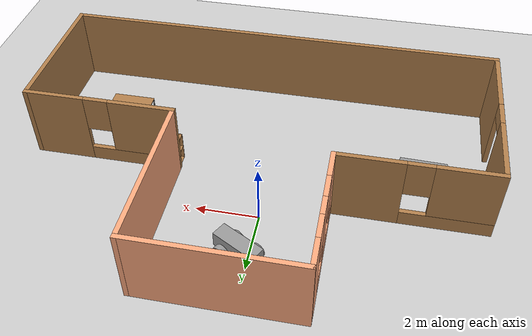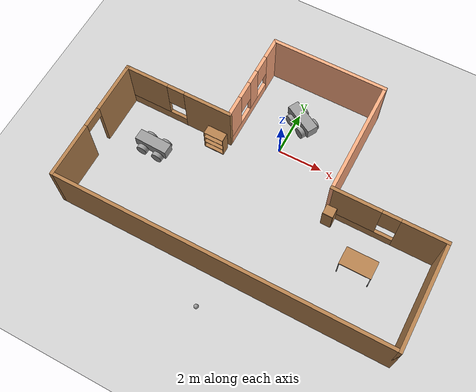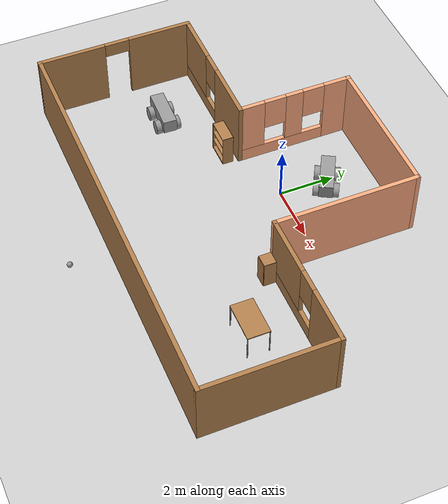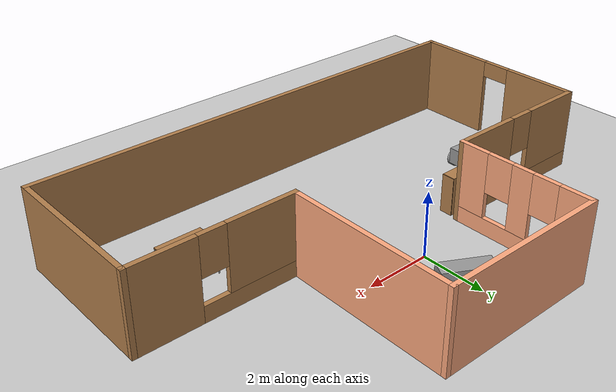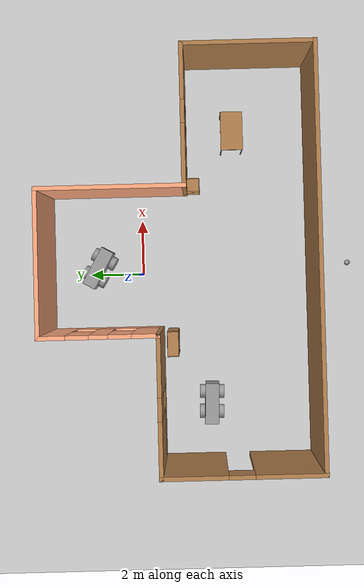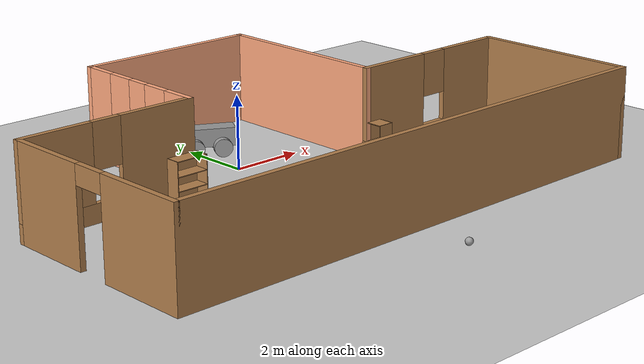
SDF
<sdf version="1.6">
 <world name="default">
  <plugin name="project1" filename="libproject1.so"/>
  <light name="sun" type="directional">
   <pose>0 0 10 0 -0 0</pose>
   <diffuse>0.8 0.8 0.8 1</diffuse>
   <specular>0.1 0.1 0.1 1</specular>
   <attenuation>
    <range>1000</range>
    <constant>0.9</constant>
    <linear>0.01</linear>
    <quadratic>0.001</quadratic>
   </attenuation>
   <direction>-0.5 0.5 -1</direction>
  </light>
  <model name="ground_plane">
   <static>1</static>
   <link name="link">
    <collision name="collision">
     <geometry><plane><normal>0 0 1</normal><size>100 100</size></plane></geometry>
     <surface><friction><ode><mu>100</mu><mu2>50</mu2></ode></friction></surface>
    </collision>
    <visual name="visual">
     <cast_shadows>0</cast_shadows>
     <geometry><plane><normal>0 0 1</normal><size>100 100</size></plane></geometry>
     <material>
      <script><uri>file://media/materials/scripts/gazebo.material</uri><name>Gazebo/Grey</name></script>
     </material>
    </visual>
   </link>
  </model>
  <gravity>0 0 -9.8</gravity>
  <magnetic_field>6e-06 2.3e-05 -4.2e-05</magnetic_field>
  <atmosphere type="adiabatic"/>
  <physics name="default_physics" default="0" type="ode">
   <max_step_size>0.001</max_step_size>
   <real_time_factor>1</real_time_factor>
   <real_time_update_rate>1000</real_time_update_rate>
  </physics>
  <scene><ambient>0.4 0.4 0.4 1</ambient><background>0.7 0.7 0.7 1</background><shadows>1</shadows></scene>
  <spherical_coordinates>
   <surface_model>EARTH_WGS84</surface_model>
   <latitude_deg>0</latitude_deg>
   <longitude_deg>0</longitude_deg>
   <elevation>0</elevation>
   <heading_deg>0</heading_deg>
  </spherical_coordinates>
  <model name="mybuilding">
   <pose>0.47861 -1.41522 0 0 -0 0</pose>
   <link name="Wall_13">
    <collision name="Wall_13_Collision">
     <geometry><box><size>4.75 0.15 2.5</size></box></geometry>
     <pose>0 0 1.25 0 -0 0</pose>
    </collision>
    <visual name="Wall_13_Visual">
     <pose>0 0 1.25 0 -0 0</pose>
     <geometry><box><size>4.75 0.15 2.5</size></box></geometry>
     <material>
      <script><uri>file://media/materials/scripts/gazebo.material</uri><name>Gazebo/Wood</name></script>
      <ambient>1 1 1 1</ambient>
     </material>
    </visual>
    <pose>7.4 -2.55 0 0 -0 1.5708</pose>
   </link>
   <link name="Wall_14">
    <pose>4.975 -0.25 0 0 -0 3.14159</pose>
    <visual name="Wall_14_Visual_0">
     <pose>-1.4975 0 1.25 0 -0 0</pose>
     <geometry><box><size>2.005 0.15 2.5</size></box></geometry>
     <material>
      <script><uri>file://media/materials/scripts/gazebo.material</uri><name>Gazebo/Wood</name></script>
      <ambient>1 1 1 1</ambient>
     </material>
    </visual>
    <collision name="Wall_14_Collision_0">
     <geometry><box><size>2.005 0.15 2.5</size></box></geometry>
     <pose>-1.4975 0 1.25 0 -0 0</pose>
    </collision>
    <visual name="Wall_14_Visual_1">
     <pose>1.0025 0 0.25 0 -0 0</pose>
     <geometry><box><size>2.995 0.15 0.5</size></box></geometry>
     <material>
      <script><uri>file://media/materials/scripts/gazebo.material</uri><name>Gazebo/Wood</name></script>
      <ambient>1 1 1 1</ambient>
     </material>
    </visual>
    <collision name="Wall_14_Collision_1">
     <geometry><box><size>2.995 0.15 0.5</size></box></geometry>
     <pose>1.0025 0 0.25 0 -0 0</pose>
    </collision>
    <visual name="Wall_14_Visual_2">
     <pose>1.4025 0 1.5 0 -0 0</pose>
     <geometry><box><size>2.195 0.15 2</size></box></geometry>
     <material>
      <script><uri>file://media/materials/scripts/gazebo.material</uri><name>Gazebo/Wood</name></script>
      <ambient>1 1 1 1</ambient>
     </material>
    </visual>
    <collision name="Wall_14_Collision_2">
     <geometry><box><size>2.195 0.15 2</size></box></geometry>
     <pose>1.4025 0 1.5 0 -0 0</pose>
    </collision>
    <visual name="Wall_14_Visual_3">
     <pose>-0.095 0 1.9 0 -0 0</pose>
     <geometry><box><size>0.8 0.15 1.2</size></box></geometry>
     <material>
      <script><uri>file://media/materials/scripts/gazebo.material</uri><name>Gazebo/Wood</name></script>
      <ambient>1 1 1 1</ambient>
     </material>
    </visual>
    <collision name="Wall_14_Collision_3">
     <geometry><box><size>0.8 0.15 1.2</size></box></geometry>
     <pose>-0.095 0 1.9 0 -0 0</pose>
    </collision>
   </link>
   <link name="Wall_18">
    <collision name="Wall_18_Collision">
     <geometry><box><size>5.25 0.15 2.5</size></box></geometry>
     <pose>0 0 1.25 0 -0 0</pose>
    </collision>
    <visual name="Wall_18_Visual">
     <pose>0 0 1.25 0 -0 0</pose>
     <geometry><box><size>5.25 0.15 2.5</size></box></geometry>
     <material>
      <script><uri>file://media/materials/scripts/gazebo.material</uri><name>Gazebo/Grey</name></script>
      <ambient>1 0.666667 0.498039 1</ambient>
     </material>
    </visual>
    <pose>2.55 2.3 0 0 -0 1.5708</pose>
   </link>
   <link name="Wall_21">
    <collision name="Wall_21_Collision">
     <geometry><box><size>5.25 0.15 2.5</size></box></geometry>
     <pose>0 0 1.25 0 -0 0</pose>
    </collision>
    <visual name="Wall_21_Visual">
     <pose>0 0 1.25 0 -0 0</pose>
     <geometry><box><size>5.25 0.15 2.5</size></box></geometry>
     <material>
      <script><uri>file://media/materials/scripts/gazebo.material</uri><name>Gazebo/Grey</name></script>
      <ambient>1 0.666667 0.498039 1</ambient>
     </material>
    </visual>
    <pose>0 4.85 0 0 -0 3.14159</pose>
   </link>
   <link name="Wall_23">
    <pose>-2.55 2.8 0 0 0 -1.5708</pose>
    <visual name="Wall_23_Visual_0">
     <pose>-1.6175 0 1.25 0 -0 0</pose>
     <geometry><box><size>1.015 0.15 2.5</size></box></geometry>
     <material>
      <script><uri>file://media/materials/scripts/gazebo.material</uri><name>Gazebo/Grey</name></script>
      <ambient>1 0.666667 0.498039 1</ambient>
     </material>
    </visual>
    <collision name="Wall_23_Collision_0">
     <geometry><box><size>1.015 0.15 2.5</size></box></geometry>
     <pose>-1.6175 0 1.25 0 -0 0</pose>
    </collision>
    <visual name="Wall_23_Visual_1">
     <pose>0.5075 0 0.25 0 -0 0</pose>
     <geometry><box><size>3.235 0.15 0.5</size></box></geometry>
     <material>
      <script><uri>file://media/materials/scripts/gazebo.material</uri><name>Gazebo/Grey</name></script>
      <ambient>1 0.666667 0.498039 1</ambient>
     </material>
    </visual>
    <collision name="Wall_23_Collision_1">
     <geometry><box><size>3.235 0.15 0.5</size></box></geometry>
     <pose>0.5075 0 0.25 0 -0 0</pose>
    </collision>
    <visual name="Wall_23_Visual_2">
     <pose>0.015 0 1.5 0 -0 0</pose>
     <geometry><box><size>0.65 0.15 2</size></box></geometry>
     <material>
      <script><uri>file://media/materials/scripts/gazebo.material</uri><name>Gazebo/Grey</name></script>
      <ambient>1 0.666667 0.498039 1</ambient>
     </material>
    </visual>
    <collision name="Wall_23_Collision_2">
     <geometry><box><size>0.65 0.15 2</size></box></geometry>
     <pose>0.015 0 1.5 0 -0 0</pose>
    </collision>
    <visual name="Wall_23_Visual_3">
     <pose>1.6325 0 1.5 0 -0 0</pose>
     <geometry><box><size>0.985 0.15 2</size></box></geometry>
     <material>
      <script><uri>file://media/materials/scripts/gazebo.material</uri><name>Gazebo/Grey</name></script>
      <ambient>1 0.666667 0.498039 1</ambient>
     </material>
    </visual>
    <collision name="Wall_23_Collision_3">
     <geometry><box><size>0.985 0.15 2</size></box></geometry>
     <pose>1.6325 0 1.5 0 -0 0</pose>
    </collision>
    <visual name="Wall_23_Visual_4">
     <pose>-0.71 0 1.9 0 -0 0</pose>
     <geometry><box><size>0.8 0.15 1.2</size></box></geometry>
     <material>
      <script><uri>file://media/materials/scripts/gazebo.material</uri><name>Gazebo/Grey</name></script>
      <ambient>1 0.666667 0.498039 1</ambient>
     </material>
    </visual>
    <collision name="Wall_23_Collision_4">
     <geometry><box><size>0.8 0.15 1.2</size></box></geometry>
     <pose>-0.71 0 1.9 0 -0 0</pose>
    </collision>
    <visual name="Wall_23_Visual_5">
     <pose>0.74 0 1.9 0 -0 0</pose>
     <geometry><box><size>0.8 0.15 1.2</size></box></geometry>
     <material>
      <script><uri>file://media/materials/scripts/gazebo.material</uri><name>Gazebo/Grey</name></script>
      <ambient>1 0.666667 0.498039 1</ambient>
     </material>
    </visual>
    <collision name="Wall_23_Collision_5">
     <geometry><box><size>0.8 0.15 1.2</size></box></geometry>
     <pose>0.74 0 1.9 0 -0 0</pose>
    </collision>
   </link>
   <link name="Wall_29">
    <pose>-4.975 0.75 0 0 -0 3.14159</pose>
    <visual name="Wall_29_Visual_0">
     <pose>-1.4075 0 1.25 0 -0 0</pose>
     <geometry><box><size>2.185 0.15 2.5</size></box></geometry>
     <material>
      <script><uri>file://media/materials/scripts/gazebo.material</uri><name>Gazebo/Wood</name></script>
      <ambient>1 1 1 1</ambient>
     </material>
    </visual>
    <collision name="Wall_29_Collision_0">
     <geometry><box><size>2.185 0.15 2.5</size></box></geometry>
     <pose>-1.4075 0 1.25 0 -0 0</pose>
    </collision>
    <visual name="Wall_29_Visual_1">
     <pose>1.0925 0 0.25 0 -0 0</pose>
     <geometry><box><size>2.815 0.15 0.5</size></box></geometry>
     <material>
      <script><uri>file://media/materials/scripts/gazebo.material</uri><name>Gazebo/Wood</name></script>
      <ambient>1 1 1 1</ambient>
     </material>
    </visual>
    <collision name="Wall_29_Collision_1">
     <geometry><box><size>2.815 0.15 0.5</size></box></geometry>
     <pose>1.0925 0 0.25 0 -0 0</pose>
    </collision>
    <visual name="Wall_29_Visual_2">
     <pose>1.4925 0 1.5 0 -0 0</pose>
     <geometry><box><size>2.015 0.15 2</size></box></geometry>
     <material>
      <script><uri>file://media/materials/scripts/gazebo.material</uri><name>Gazebo/Wood</name></script>
      <ambient>1 1 1 1</ambient>
     </material>
    </visual>
    <collision name="Wall_29_Collision_2">
     <geometry><box><size>2.015 0.15 2</size></box></geometry>
     <pose>1.4925 0 1.5 0 -0 0</pose>
    </collision>
    <visual name="Wall_29_Visual_3">
     <pose>0.085 0 1.9 0 -0 0</pose>
     <geometry><box><size>0.8 0.15 1.2</size></box></geometry>
     <material>
      <script><uri>file://media/materials/scripts/gazebo.material</uri><name>Gazebo/Wood</name></script>
      <ambient>1 1 1 1</ambient>
     </material>
    </visual>
    <collision name="Wall_29_Collision_3">
     <geometry><box><size>0.8 0.15 1.2</size></box></geometry>
     <pose>0.085 0 1.9 0 -0 0</pose>
    </collision>
   </link>
   <link name="Wall_30">
    <pose>-7.4 -2.05 0 0 0 -1.5708</pose>
    <visual name="Wall_30_Visual_0">
     <pose>-1.6925 0 1.25 0 -0 0</pose>
     <geometry><box><size>2.365 0.15 2.5</size></box></geometry>
     <material>
      <script><uri>file://media/materials/scripts/gazebo.material</uri><name>Gazebo/Wood</name></script>
      <ambient>1 1 1 1</ambient>
     </material>
    </visual>
    <collision name="Wall_30_Collision_0">
     <geometry><box><size>2.365 0.15 2.5</size></box></geometry>
     <pose>-1.6925 0 1.25 0 -0 0</pose>
    </collision>
    <visual name="Wall_30_Visual_1">
     <pose>1.6325 0 1.25 0 -0 0</pose>
     <geometry><box><size>2.485 0.15 2.5</size></box></geometry>
     <material>
      <script><uri>file://media/materials/scripts/gazebo.material</uri><name>Gazebo/Wood</name></script>
      <ambient>1 1 1 1</ambient>
     </material>
    </visual>
    <collision name="Wall_30_Collision_1">
     <geometry><box><size>2.485 0.15 2.5</size></box></geometry>
     <pose>1.6325 0 1.25 0 -0 0</pose>
    </collision>
    <visual name="Wall_30_Visual_2">
     <pose>-0.06 0 2.25 0 -0 0</pose>
     <geometry><box><size>0.9 0.15 0.5</size></box></geometry>
     <material>
      <script><uri>file://media/materials/scripts/gazebo.material</uri><name>Gazebo/Wood</name></script>
      <ambient>1 1 1 1</ambient>
     </material>
    </visual>
    <collision name="Wall_30_Collision_2">
     <geometry><box><size>0.9 0.15 0.5</size></box></geometry>
     <pose>-0.06 0 2.25 0 -0 0</pose>
    </collision>
   </link>
   <link name="Wall_31">
    <collision name="Wall_31_Collision">
     <geometry><box><size>14.95 0.15 2.5</size></box></geometry>
     <pose>0 0 1.25 0 -0 0</pose>
    </collision>
    <visual name="Wall_31_Visual">
     <pose>0 0 1.25 0 -0 0</pose>
     <geometry><box><size>14.95 0.15 2.5</size></box></geometry>
     <material>
      <script><uri>file://media/materials/scripts/gazebo.material</uri><name>Gazebo/Wood</name></script>
      <ambient>1 1 1 1</ambient>
     </material>
    </visual>
    <pose>0 -4.85 0 0 -0 0</pose>
   </link>
   <static>1</static>
  </model>
  <model name="rover">
   <link name="link_2">
    <pose>0 0 0.2 0 -0 0</pose>
    <inertial>
     <mass>1</mass>
     <inertia>
      <ixx>0.166667</ixx>
      <ixy>0</ixy>
      <ixz>0</ixz>
      <iyy>0.166667</iyy>
      <iyz>0</iyz>
      <izz>0.166667</izz>
     </inertia>
    </inertial>
    <visual name="visual">
     <geometry><box><size>0.5 1.5 0.5</size></box></geometry>
     <material>
      <lighting>1</lighting>
      <script><uri>file://media/materials/scripts/gazebo.material</uri><name>Gazebo/Grey</name></script>
      <ambient>0.3 0.3 0.3 1</ambient>
      <diffuse>0.7 0.7 0.7 1</diffuse>
      <specular>0.01 0.01 0.01 1</specular>
      <emissive>0 0 0 1</emissive>
      <shader type="vertex"><normal_map>__default__</normal_map></shader>
     </material>
    </visual>
    <collision name="collision">
     <geometry><box><size>0.5 1.5 0.5</size></box></geometry>
     <surface>
      <friction>
       <ode><mu>1</mu><mu2>1</mu2><fdir1>0 0 0</fdir1><slip1>0</slip1><slip2>0</slip2></ode>
       <torsional>
        <coefficient>1</coefficient>
        <patch_radius>0</patch_radius>
        <surface_radius>0</surface_radius>
        <use_patch_radius>1</use_patch_radius>
        <ode><slip>0</slip></ode>
       </torsional>
      </friction>
      <bounce><restitution_coefficient>0</restitution_coefficient><threshold>1e+06</threshold></bounce>
      <contact>
       <collide_without_contact>0</collide_without_contact>
       <collide_without_contact_bitmask>1</collide_without_contact_bitmask>
       <collide_bitmask>1</collide_bitmask>
       <ode>
        <soft_cfm>0</soft_cfm>
        <soft_erp>0.2</soft_erp>
        <kp>1e+13</kp>
        <kd>1</kd>
        <max_vel>0.01</max_vel>
        <min_depth>0</min_depth>
       </ode>
       <bullet>
        <split_impulse>1</split_impulse>
        <split_impulse_penetration_threshold>-0.01</split_impulse_penetration_threshold>
        <soft_cfm>0</soft_cfm>
        <soft_erp>0.2</soft_erp>
        <kp>1e+13</kp>
        <kd>1</kd>
       </bullet>
      </contact>
     </surface>
    </collision>
   </link>
   <link name="link_3">
    <pose>-0.350048 -0.37499 -0.05 1.5707 0 1.5707</pose>
    <inertial>
     <mass>1</mass>
     <inertia><ixx>0.145833</ixx><ixy>0</ixy><ixz>0</ixz><iyy>0.145833</iyy><iyz>0</iyz><izz>0.125</izz></inertia>
    </inertial>
    <visual name="visual">
     <geometry><cylinder><radius>0.25</radius><length>0.2</length></cylinder></geometry>
     <material>
      <lighting>1</lighting>
      <script><uri>file://media/materials/scripts/gazebo.material</uri><name>Gazebo/Grey</name></script>
      <ambient>0.3 0.3 0.3 1</ambient>
      <diffuse>0.7 0.7 0.7 1</diffuse>
      <specular>0.01 0.01 0.01 1</specular>
      <emissive>0 0 0 1</emissive>
      <shader type="vertex"><normal_map>__default__</normal_map></shader>
     </material>
    </visual>
    <collision name="collision">
     <geometry><cylinder><radius>0.25</radius><length>0.2</length></cylinder></geometry>
     <surface>
      <friction>
       <ode><mu>1</mu><mu2>1</mu2><fdir1>0 0 0</fdir1><slip1>0</slip1><slip2>0</slip2></ode>
       <torsional>
        <coefficient>1</coefficient>
        <patch_radius>0</patch_radius>
        <surface_radius>0</surface_radius>
        <use_patch_radius>1</use_patch_radius>
        <ode><slip>0</slip></ode>
       </torsional>
      </friction>
      <bounce><restitution_coefficient>0</restitution_coefficient><threshold>1e+06</threshold></bounce>
      <contact>
       <collide_without_contact>0</collide_without_contact>
       <collide_without_contact_bitmask>1</collide_without_contact_bitmask>
       <collide_bitmask>1</collide_bitmask>
       <ode>
        <soft_cfm>0</soft_cfm>
        <soft_erp>0.2</soft_erp>
        <kp>1e+13</kp>
        <kd>1</kd>
        <max_vel>0.01</max_vel>
        <min_depth>0</min_depth>
       </ode>
       <bullet>
        <split_impulse>1</split_impulse>
        <split_impulse_penetration_threshold>-0.01</split_impulse_penetration_threshold>
        <soft_cfm>0</soft_cfm>
        <soft_erp>0.2</soft_erp>
        <kp>1e+13</kp>
        <kd>1</kd>
       </bullet>
      </contact>
     </surface>
    </collision>
   </link>
   <link name="link_3_clone">
    <pose>0.350048 -0.37499 -0.05 1.5707 0 1.5707</pose>
    <inertial>
     <mass>1</mass>
     <inertia><ixx>0.145833</ixx><ixy>0</ixy><ixz>0</ixz><iyy>0.145833</iyy><iyz>0</iyz><izz>0.125</izz></inertia>
    </inertial>
    <visual name="visual">
     <geometry><cylinder><radius>0.25</radius><length>0.2</length></cylinder></geometry>
     <material>
      <lighting>1</lighting>
      <script><uri>file://media/materials/scripts/gazebo.material</uri><name>Gazebo/Grey</name></script>
      <ambient>0.3 0.3 0.3 1</ambient>
      <diffuse>0.7 0.7 0.7 1</diffuse>
      <specular>0.01 0.01 0.01 1</specular>
      <emissive>0 0 0 1</emissive>
      <shader type="vertex"><normal_map>__default__</normal_map></shader>
     </material>
    </visual>
    <collision name="collision">
     <geometry><cylinder><radius>0.25</radius><length>0.2</length></cylinder></geometry>
     <surface>
      <friction>
       <ode><mu>1</mu><mu2>1</mu2><fdir1>0 0 0</fdir1><slip1>0</slip1><slip2>0</slip2></ode>
       <torsional>
        <coefficient>1</coefficient>
        <patch_radius>0</patch_radius>
        <surface_radius>0</surface_radius>
        <use_patch_radius>1</use_patch_radius>
        <ode><slip>0</slip></ode>
       </torsional>
      </friction>
      <bounce><restitution_coefficient>0</restitution_coefficient><threshold>1e+06</threshold></bounce>
      <contact>
       <collide_without_contact>0</collide_without_contact>
       <collide_without_contact_bitmask>1</collide_without_contact_bitmask>
       <collide_bitmask>1</collide_bitmask>
       <ode>
        <soft_cfm>0</soft_cfm>
        <soft_erp>0.2</soft_erp>
        <kp>1e+13</kp>
        <kd>1</kd>
        <max_vel>0.01</max_vel>
        <min_depth>0</min_depth>
       </ode>
       <bullet>
        <split_impulse>1</split_impulse>
        <split_impulse_penetration_threshold>-0.01</split_impulse_penetration_threshold>
        <soft_cfm>0</soft_cfm>
        <soft_erp>0.2</soft_erp>
        <kp>1e+13</kp>
        <kd>1</kd>
       </bullet>
      </contact>
     </surface>
    </collision>
   </link>
   <link name="link_3_clone_0">
    <pose>-0.350048 0.37499 -0.05 1.5707 0 1.5707</pose>
    <inertial>
     <mass>1</mass>
     <inertia><ixx>0.145833</ixx><ixy>0</ixy><ixz>0</ixz><iyy>0.145833</iyy><iyz>0</iyz><izz>0.125</izz></inertia>
    </inertial>
    <visual name="visual">
     <geometry><cylinder><radius>0.25</radius><length>0.2</length></cylinder></geometry>
     <material>
      <lighting>1</lighting>
      <script><uri>file://media/materials/scripts/gazebo.material</uri><name>Gazebo/Grey</name></script>
      <ambient>0.3 0.3 0.3 1</ambient>
      <diffuse>0.7 0.7 0.7 1</diffuse>
      <specular>0.01 0.01 0.01 1</specular>
      <emissive>0 0 0 1</emissive>
      <shader type="vertex"><normal_map>__default__</normal_map></shader>
     </material>
    </visual>
    <collision name="collision">
     <geometry><cylinder><radius>0.25</radius><length>0.2</length></cylinder></geometry>
     <surface>
      <friction>
       <ode><mu>1</mu><mu2>1</mu2><fdir1>0 0 0</fdir1><slip1>0</slip1><slip2>0</slip2></ode>
       <torsional>
        <coefficient>1</coefficient>
        <patch_radius>0</patch_radius>
        <surface_radius>0</surface_radius>
        <use_patch_radius>1</use_patch_radius>
        <ode><slip>0</slip></ode>
       </torsional>
      </friction>
      <bounce><restitution_coefficient>0</restitution_coefficient><threshold>1e+06</threshold></bounce>
      <contact>
       <collide_without_contact>0</collide_without_contact>
       <collide_without_contact_bitmask>1</collide_without_contact_bitmask>
       <collide_bitmask>1</collide_bitmask>
       <ode>
        <soft_cfm>0</soft_cfm>
        <soft_erp>0.2</soft_erp>
        <kp>1e+13</kp>
        <kd>1</kd>
        <max_vel>0.01</max_vel>
        <min_depth>0</min_depth>
       </ode>
       <bullet>
        <split_impulse>1</split_impulse>
        <split_impulse_penetration_threshold>-0.01</split_impulse_penetration_threshold>
        <soft_cfm>0</soft_cfm>
        <soft_erp>0.2</soft_erp>
        <kp>1e+13</kp>
        <kd>1</kd>
       </bullet>
      </contact>
     </surface>
    </collision>
   </link>
   <link name="link_3_clone_0_clone">
    <pose>0.350048 0.37499 -0.05 1.5707 0 1.5707</pose>
    <inertial>
     <mass>1</mass>
     <inertia><ixx>0.145833</ixx><ixy>0</ixy><ixz>0</ixz><iyy>0.145833</iyy><iyz>0</iyz><izz>0.125</izz></inertia>
    </inertial>
    <visual name="visual">
     <geometry><cylinder><radius>0.25</radius><length>0.2</length></cylinder></geometry>
     <material>
      <lighting>1</lighting>
      <script><uri>file://media/materials/scripts/gazebo.material</uri><name>Gazebo/Grey</name></script>
      <ambient>0.3 0.3 0.3 1</ambient>
      <diffuse>0.7 0.7 0.7 1</diffuse>
      <specular>0.01 0.01 0.01 1</specular>
      <emissive>0 0 0 1</emissive>
      <shader type="vertex"><normal_map>__default__</normal_map></shader>
     </material>
    </visual>
    <collision name="collision">
     <geometry><cylinder><radius>0.25</radius><length>0.2</length></cylinder></geometry>
     <surface>
      <friction>
       <ode><mu>1</mu><mu2>1</mu2><fdir1>0 0 0</fdir1><slip1>0</slip1><slip2>0</slip2></ode>
       <torsional>
        <coefficient>1</coefficient>
        <patch_radius>0</patch_radius>
        <surface_radius>0</surface_radius>
        <use_patch_radius>1</use_patch_radius>
        <ode><slip>0</slip></ode>
       </torsional>
      </friction>
      <bounce><restitution_coefficient>0</restitution_coefficient><threshold>1e+06</threshold></bounce>
      <contact>
       <collide_without_contact>0</collide_without_contact>
       <collide_without_contact_bitmask>1</collide_without_contact_bitmask>
       <collide_bitmask>1</collide_bitmask>
       <ode>
        <soft_cfm>0</soft_cfm>
        <soft_erp>0.2</soft_erp>
        <kp>1e+13</kp>
        <kd>1</kd>
        <max_vel>0.01</max_vel>
        <min_depth>0</min_depth>
       </ode>
       <bullet>
        <split_impulse>1</split_impulse>
        <split_impulse_penetration_threshold>-0.01</split_impulse_penetration_threshold>
        <soft_cfm>0</soft_cfm>
        <soft_erp>0.2</soft_erp>
        <kp>1e+13</kp>
        <kd>1</kd>
       </bullet>
      </contact>
     </surface>
    </collision>
   </link>
   <joint name="link_2_JOINT_0" type="revolute">
    <parent>link_2</parent>
    <child>link_3</child>
    <axis>
     <xyz>0 0 1</xyz>
     <use_parent_model_frame>0</use_parent_model_frame>
     <limit>
      <lower>-1.79769e+308</lower>
      <upper>1.79769e+308</upper>
      <effort>-1</effort>
      <velocity>-1</velocity>
     </limit>
     <dynamics>
      <spring_reference>0</spring_reference>
      <spring_stiffness>0</spring_stiffness>
      <damping>0</damping>
      <friction>0</friction>
     </dynamics>
    </axis>
    <physics>
     <ode><limit><cfm>0</cfm><erp>0.2</erp></limit><suspension><cfm>0</cfm><erp>0.2</erp></suspension></ode>
    </physics>
   </joint>
   <joint name="link_2_JOINT_1" type="revolute">
    <parent>link_2</parent>
    <child>link_3_clone</child>
    <axis>
     <xyz>0 0 1</xyz>
     <use_parent_model_frame>0</use_parent_model_frame>
     <limit>
      <lower>-1.79769e+308</lower>
      <upper>1.79769e+308</upper>
      <effort>-1</effort>
      <velocity>-1</velocity>
     </limit>
     <dynamics>
      <spring_reference>0</spring_reference>
      <spring_stiffness>0</spring_stiffness>
      <damping>0</damping>
     </dynamics>
    </axis>
    <physics>
     <ode><limit><cfm>0</cfm><erp>0.2</erp></limit><suspension><cfm>0</cfm><erp>0.2</erp></suspension></ode>
    </physics>
   </joint>
   <joint name="link_2_JOINT_3" type="revolute">
    <parent>link_2</parent>
    <child>link_3_clone_0</child>
    <axis>
     <xyz>0 0 1</xyz>
     <use_parent_model_frame>0</use_parent_model_frame>
     <limit>
      <lower>-1.79769e+308</lower>
      <upper>1.79769e+308</upper>
      <effort>-1</effort>
      <velocity>-1</velocity>
     </limit>
     <dynamics>
      <spring_reference>0</spring_reference>
      <spring_stiffness>0</spring_stiffness>
      <damping>0</damping>
     </dynamics>
    </axis>
    <physics>
     <ode><limit><cfm>0</cfm><erp>0.2</erp></limit><suspension><cfm>0</cfm><erp>0.2</erp></suspension></ode>
    </physics>
   </joint>
   <joint name="link_2_JOINT_4" type="revolute">
    <parent>link_2</parent>
    <child>link_3_clone_0_clone</child>
    <axis>
     <xyz>0 0 1</xyz>
     <use_parent_model_frame>0</use_parent_model_frame>
     <limit>
      <lower>-1.79769e+308</lower>
      <upper>1.79769e+308</upper>
      <effort>-1</effort>
      <velocity>-1</velocity>
     </limit>
     <dynamics>
      <spring_reference>0</spring_reference>
      <spring_stiffness>0</spring_stiffness>
      <damping>0</damping>
     </dynamics>
    </axis>
    <physics>
     <ode><limit><cfm>0</cfm><erp>0.2</erp></limit><suspension><cfm>0</cfm><erp>0.2</erp></suspension></ode>
    </physics>
   </joint>
   <static>0</static>
   <pose>-4.83161 -2.47183 0.300009 2e-06 2e-06 -1.60236</pose>
  </model>
  <model name="rover_0">
   <link name="link_2">
    <pose>0 0 0.2 0 -0 0</pose>
    <inertial>
     <mass>1</mass>
     <inertia>
      <ixx>0.166667</ixx>
      <ixy>0</ixy>
      <ixz>0</ixz>
      <iyy>0.166667</iyy>
      <iyz>0</iyz>
      <izz>0.166667</izz>
     </inertia>
    </inertial>
    <visual name="visual">
     <geometry><box><size>0.5 1.5 0.5</size></box></geometry>
     <material>
      <lighting>1</lighting>
      <script><uri>file://media/materials/scripts/gazebo.material</uri><name>Gazebo/Grey</name></script>
      <ambient>0.3 0.3 0.3 1</ambient>
      <diffuse>0.7 0.7 0.7 1</diffuse>
      <specular>0.01 0.01 0.01 1</specular>
      <emissive>0 0 0 1</emissive>
      <shader type="vertex"><normal_map>__default__</normal_map></shader>
     </material>
    </visual>
    <collision name="collision">
     <geometry><box><size>0.5 1.5 0.5</size></box></geometry>
     <surface>
      <friction>
       <ode><mu>1</mu><mu2>1</mu2><fdir1>0 0 0</fdir1><slip1>0</slip1><slip2>0</slip2></ode>
       <torsional>
        <coefficient>1</coefficient>
        <patch_radius>0</patch_radius>
        <surface_radius>0</surface_radius>
        <use_patch_radius>1</use_patch_radius>
        <ode><slip>0</slip></ode>
       </torsional>
      </friction>
      <bounce><restitution_coefficient>0</restitution_coefficient><threshold>1e+06</threshold></bounce>
      <contact>
       <collide_without_contact>0</collide_without_contact>
       <collide_without_contact_bitmask>1</collide_without_contact_bitmask>
       <collide_bitmask>1</collide_bitmask>
       <ode>
        <soft_cfm>0</soft_cfm>
        <soft_erp>0.2</soft_erp>
        <kp>1e+13</kp>
        <kd>1</kd>
        <max_vel>0.01</max_vel>
        <min_depth>0</min_depth>
       </ode>
       <bullet>
        <split_impulse>1</split_impulse>
        <split_impulse_penetration_threshold>-0.01</split_impulse_penetration_threshold>
        <soft_cfm>0</soft_cfm>
        <soft_erp>0.2</soft_erp>
        <kp>1e+13</kp>
        <kd>1</kd>
       </bullet>
      </contact>
     </surface>
    </collision>
   </link>
   <link name="link_3">
    <pose>-0.350048 -0.37499 -0.05 1.5707 0 1.5707</pose>
    <inertial>
     <mass>1</mass>
     <inertia><ixx>0.145833</ixx><ixy>0</ixy><ixz>0</ixz><iyy>0.145833</iyy><iyz>0</iyz><izz>0.125</izz></inertia>
    </inertial>
    <visual name="visual">
     <geometry><cylinder><radius>0.25</radius><length>0.2</length></cylinder></geometry>
     <material>
      <lighting>1</lighting>
      <script><uri>file://media/materials/scripts/gazebo.material</uri><name>Gazebo/Grey</name></script>
      <ambient>0.3 0.3 0.3 1</ambient>
      <diffuse>0.7 0.7 0.7 1</diffuse>
      <specular>0.01 0.01 0.01 1</specular>
      <emissive>0 0 0 1</emissive>
      <shader type="vertex"><normal_map>__default__</normal_map></shader>
     </material>
    </visual>
    <collision name="collision">
     <geometry><cylinder><radius>0.25</radius><length>0.2</length></cylinder></geometry>
     <surface>
      <friction>
       <ode><mu>1</mu><mu2>1</mu2><fdir1>0 0 0</fdir1><slip1>0</slip1><slip2>0</slip2></ode>
       <torsional>
        <coefficient>1</coefficient>
        <patch_radius>0</patch_radius>
        <surface_radius>0</surface_radius>
        <use_patch_radius>1</use_patch_radius>
        <ode><slip>0</slip></ode>
       </torsional>
      </friction>
      <bounce><restitution_coefficient>0</restitution_coefficient><threshold>1e+06</threshold></bounce>
      <contact>
       <collide_without_contact>0</collide_without_contact>
       <collide_without_contact_bitmask>1</collide_without_contact_bitmask>
       <collide_bitmask>1</collide_bitmask>
       <ode>
        <soft_cfm>0</soft_cfm>
        <soft_erp>0.2</soft_erp>
        <kp>1e+13</kp>
        <kd>1</kd>
        <max_vel>0.01</max_vel>
        <min_depth>0</min_depth>
       </ode>
       <bullet>
        <split_impulse>1</split_impulse>
        <split_impulse_penetration_threshold>-0.01</split_impulse_penetration_threshold>
        <soft_cfm>0</soft_cfm>
        <soft_erp>0.2</soft_erp>
        <kp>1e+13</kp>
        <kd>1</kd>
       </bullet>
      </contact>
     </surface>
    </collision>
   </link>
   <link name="link_3_clone">
    <pose>0.350048 -0.37499 -0.05 1.5707 0 1.5707</pose>
    <inertial>
     <mass>1</mass>
     <inertia><ixx>0.145833</ixx><ixy>0</ixy><ixz>0</ixz><iyy>0.145833</iyy><iyz>0</iyz><izz>0.125</izz></inertia>
    </inertial>
    <visual name="visual">
     <geometry><cylinder><radius>0.25</radius><length>0.2</length></cylinder></geometry>
     <material>
      <lighting>1</lighting>
      <script><uri>file://media/materials/scripts/gazebo.material</uri><name>Gazebo/Grey</name></script>
      <ambient>0.3 0.3 0.3 1</ambient>
      <diffuse>0.7 0.7 0.7 1</diffuse>
      <specular>0.01 0.01 0.01 1</specular>
      <emissive>0 0 0 1</emissive>
      <shader type="vertex"><normal_map>__default__</normal_map></shader>
     </material>
    </visual>
    <collision name="collision">
     <geometry><cylinder><radius>0.25</radius><length>0.2</length></cylinder></geometry>
     <surface>
      <friction>
       <ode><mu>1</mu><mu2>1</mu2><fdir1>0 0 0</fdir1><slip1>0</slip1><slip2>0</slip2></ode>
       <torsional>
        <coefficient>1</coefficient>
        <patch_radius>0</patch_radius>
        <surface_radius>0</surface_radius>
        <use_patch_radius>1</use_patch_radius>
        <ode><slip>0</slip></ode>
       </torsional>
      </friction>
      <bounce><restitution_coefficient>0</restitution_coefficient><threshold>1e+06</threshold></bounce>
      <contact>
       <collide_without_contact>0</collide_without_contact>
       <collide_without_contact_bitmask>1</collide_without_contact_bitmask>
       <collide_bitmask>1</collide_bitmask>
       <ode>
        <soft_cfm>0</soft_cfm>
        <soft_erp>0.2</soft_erp>
        <kp>1e+13</kp>
        <kd>1</kd>
        <max_vel>0.01</max_vel>
        <min_depth>0</min_depth>
       </ode>
       <bullet>
        <split_impulse>1</split_impulse>
        <split_impulse_penetration_threshold>-0.01</split_impulse_penetration_threshold>
        <soft_cfm>0</soft_cfm>
        <soft_erp>0.2</soft_erp>
        <kp>1e+13</kp>
        <kd>1</kd>
       </bullet>
      </contact>
     </surface>
    </collision>
   </link>
   <link name="link_3_clone_0">
    <pose>-0.350048 0.37499 -0.05 1.5707 0 1.5707</pose>
    <inertial>
     <mass>1</mass>
     <inertia><ixx>0.145833</ixx><ixy>0</ixy><ixz>0</ixz><iyy>0.145833</iyy><iyz>0</iyz><izz>0.125</izz></inertia>
    </inertial>
    <visual name="visual">
     <geometry><cylinder><radius>0.25</radius><length>0.2</length></cylinder></geometry>
     <material>
      <lighting>1</lighting>
      <script><uri>file://media/materials/scripts/gazebo.material</uri><name>Gazebo/Grey</name></script>
      <ambient>0.3 0.3 0.3 1</ambient>
      <diffuse>0.7 0.7 0.7 1</diffuse>
      <specular>0.01 0.01 0.01 1</specular>
      <emissive>0 0 0 1</emissive>
      <shader type="vertex"><normal_map>__default__</normal_map></shader>
     </material>
    </visual>
    <collision name="collision">
     <geometry><cylinder><radius>0.25</radius><length>0.2</length></cylinder></geometry>
     <surface>
      <friction>
       <ode><mu>1</mu><mu2>1</mu2><fdir1>0 0 0</fdir1><slip1>0</slip1><slip2>0</slip2></ode>
       <torsional>
        <coefficient>1</coefficient>
        <patch_radius>0</patch_radius>
        <surface_radius>0</surface_radius>
        <use_patch_radius>1</use_patch_radius>
        <ode><slip>0</slip></ode>
       </torsional>
      </friction>
      <bounce><restitution_coefficient>0</restitution_coefficient><threshold>1e+06</threshold></bounce>
      <contact>
       <collide_without_contact>0</collide_without_contact>
       <collide_without_contact_bitmask>1</collide_without_contact_bitmask>
       <collide_bitmask>1</collide_bitmask>
       <ode>
        <soft_cfm>0</soft_cfm>
        <soft_erp>0.2</soft_erp>
        <kp>1e+13</kp>
        <kd>1</kd>
        <max_vel>0.01</max_vel>
        <min_depth>0</min_depth>
       </ode>
       <bullet>
        <split_impulse>1</split_impulse>
        <split_impulse_penetration_threshold>-0.01</split_impulse_penetration_threshold>
        <soft_cfm>0</soft_cfm>
        <soft_erp>0.2</soft_erp>
        <kp>1e+13</kp>
        <kd>1</kd>
       </bullet>
      </contact>
     </surface>
    </collision>
   </link>
   <link name="link_3_clone_0_clone">
    <pose>0.350048 0.37499 -0.05 1.5707 0 1.5707</pose>
    <inertial>
     <mass>1</mass>
     <inertia><ixx>0.145833</ixx><ixy>0</ixy><ixz>0</ixz><iyy>0.145833</iyy><iyz>0</iyz><izz>0.125</izz></inertia>
    </inertial>
    <visual name="visual">
     <geometry><cylinder><radius>0.25</radius><length>0.2</length></cylinder></geometry>
     <material>
      <lighting>1</lighting>
      <script><uri>file://media/materials/scripts/gazebo.material</uri><name>Gazebo/Grey</name></script>
      <ambient>0.3 0.3 0.3 1</ambient>
      <diffuse>0.7 0.7 0.7 1</diffuse>
      <specular>0.01 0.01 0.01 1</specular>
      <emissive>0 0 0 1</emissive>
      <shader type="vertex"><normal_map>__default__</normal_map></shader>
     </material>
    </visual>
    <collision name="collision">
     <geometry><cylinder><radius>0.25</radius><length>0.2</length></cylinder></geometry>
     <surface>
      <friction>
       <ode><mu>1</mu><mu2>1</mu2><fdir1>0 0 0</fdir1><slip1>0</slip1><slip2>0</slip2></ode>
       <torsional>
        <coefficient>1</coefficient>
        <patch_radius>0</patch_radius>
        <surface_radius>0</surface_radius>
        <use_patch_radius>1</use_patch_radius>
        <ode><slip>0</slip></ode>
       </torsional>
      </friction>
      <bounce><restitution_coefficient>0</restitution_coefficient><threshold>1e+06</threshold></bounce>
      <contact>
       <collide_without_contact>0</collide_without_contact>
       <collide_without_contact_bitmask>1</collide_without_contact_bitmask>
       <collide_bitmask>1</collide_bitmask>
       <ode>
        <soft_cfm>0</soft_cfm>
        <soft_erp>0.2</soft_erp>
        <kp>1e+13</kp>
        <kd>1</kd>
        <max_vel>0.01</max_vel>
        <min_depth>0</min_depth>
       </ode>
       <bullet>
        <split_impulse>1</split_impulse>
        <split_impulse_penetration_threshold>-0.01</split_impulse_penetration_threshold>
        <soft_cfm>0</soft_cfm>
        <soft_erp>0.2</soft_erp>
        <kp>1e+13</kp>
        <kd>1</kd>
       </bullet>
      </contact>
     </surface>
    </collision>
   </link>
   <joint name="link_2_JOINT_0" type="revolute">
    <parent>link_2</parent>
    <child>link_3</child>
    <axis>
     <xyz>0 0 1</xyz>
     <use_parent_model_frame>0</use_parent_model_frame>
     <limit>
      <lower>-1.79769e+308</lower>
      <upper>1.79769e+308</upper>
      <effort>-1</effort>
      <velocity>-1</velocity>
     </limit>
     <dynamics>
      <spring_reference>0</spring_reference>
      <spring_stiffness>0</spring_stiffness>
      <damping>0</damping>
      <friction>0</friction>
     </dynamics>
    </axis>
    <physics>
     <ode><limit><cfm>0</cfm><erp>0.2</erp></limit><suspension><cfm>0</cfm><erp>0.2</erp></suspension></ode>
    </physics>
   </joint>
   <joint name="link_2_JOINT_1" type="revolute">
    <parent>link_2</parent>
    <child>link_3_clone</child>
    <axis>
     <xyz>0 0 1</xyz>
     <use_parent_model_frame>0</use_parent_model_frame>
     <limit>
      <lower>-1.79769e+308</lower>
      <upper>1.79769e+308</upper>
      <effort>-1</effort>
      <velocity>-1</velocity>
     </limit>
     <dynamics>
      <spring_reference>0</spring_reference>
      <spring_stiffness>0</spring_stiffness>
      <damping>0</damping>
     </dynamics>
    </axis>
    <physics>
     <ode><limit><cfm>0</cfm><erp>0.2</erp></limit><suspension><cfm>0</cfm><erp>0.2</erp></suspension></ode>
    </physics>
   </joint>
   <joint name="link_2_JOINT_3" type="revolute">
    <parent>link_2</parent>
    <child>link_3_clone_0</child>
    <axis>
     <xyz>0 0 1</xyz>
     <use_parent_model_frame>0</use_parent_model_frame>
     <limit>
      <lower>-1.79769e+308</lower>
      <upper>1.79769e+308</upper>
      <effort>-1</effort>
      <velocity>-1</velocity>
     </limit>
     <dynamics>
      <spring_reference>0</spring_reference>
      <spring_stiffness>0</spring_stiffness>
      <damping>0</damping>
     </dynamics>
    </axis>
    <physics>
     <ode><limit><cfm>0</cfm><erp>0.2</erp></limit><suspension><cfm>0</cfm><erp>0.2</erp></suspension></ode>
    </physics>
   </joint>
   <joint name="link_2_JOINT_4" type="revolute">
    <parent>link_2</parent>
    <child>link_3_clone_0_clone</child>
    <axis>
     <xyz>0 0 1</xyz>
     <use_parent_model_frame>0</use_parent_model_frame>
     <limit>
      <lower>-1.79769e+308</lower>
      <upper>1.79769e+308</upper>
      <effort>-1</effort>
      <velocity>-1</velocity>
     </limit>
     <dynamics>
      <spring_reference>0</spring_reference>
      <spring_stiffness>0</spring_stiffness>
      <damping>0</damping>
     </dynamics>
    </axis>
    <physics>
     <ode><limit><cfm>0</cfm><erp>0.2</erp></limit><suspension><cfm>0</cfm><erp>0.2</erp></suspension></ode>
    </physics>
   </joint>
   <static>0</static>
   <pose>0.272161 1.62292 0.300006 -2e-06 9e-06 1.06499</pose>
  </model>
  <model name="cabinet">
   <static>1</static>
   <link name="cabinet_bottom_plate">
    <inertial>
     <pose>0 0 -1 0 -0 0</pose>
     <inertia><ixx>2.05</ixx><ixy>0</ixy><ixz>0</ixz><iyy>2.05</iyy><iyz>0</iyz><izz>2.05</izz></inertia>
     <mass>25</mass>
    </inertial>
    <collision name="cabinet_bottom_plate_geom">
     <pose>0 0 0.01 0 -0 0</pose>
     <geometry><box><size>0.45 0.45 0.02</size></box></geometry>
    </collision>
    <visual name="cabinet_bottom_plate_geom_visual">
     <pose>0 0 0.01 0 -0 0</pose>
     <geometry><box><size>0.45 0.45 0.02</size></box></geometry>
     <material>
      <script><uri>file://media/materials/scripts/gazebo.material</uri><name>Gazebo/Wood</name></script>
     </material>
    </visual>
    <collision name="cabinet_bottom_plate_geom_cabinet_back_plate">
     <pose>0.235 0 0.51 0 -0 0</pose>
     <geometry><box><size>0.02 0.45 1.02</size></box></geometry>
    </collision>
    <visual name="cabinet_bottom_plate_geom_cabinet_back_plate_visual">
     <pose>0.235 0 0.51 0 -0 0</pose>
     <geometry><box><size>0.02 0.45 1.02</size></box></geometry>
     <material>
      <script><uri>file://media/materials/scripts/gazebo.material</uri><name>Gazebo/Wood</name></script>
     </material>
    </visual>
    <collision name="cabinet_bottom_plate_geom_cabinet_left_plate">
     <pose>0 0.235 0.51 0 -0 0</pose>
     <geometry><box><size>0.45 0.02 1.02</size></box></geometry>
    </collision>
    <visual name="cabinet_bottom_plate_geom_cabinet_left_plate_visual">
     <pose>0 0.235 0.51 0 -0 0</pose>
     <geometry><box><size>0.45 0.02 1.02</size></box></geometry>
     <material>
      <script><uri>file://media/materials/scripts/gazebo.material</uri><name>Gazebo/Wood</name></script>
     </material>
    </visual>
    <collision name="cabinet_bottom_plate_geom_cabinet_middle_plate">
     <pose>0 0 0.51 0 -0 0</pose>
     <geometry><box><size>0.45 0.45 0.02</size></box></geometry>
    </collision>
    <visual name="cabinet_bottom_plate_geom_cabinet_middle_plate_visual">
     <pose>0 0 0.51 0 -0 0</pose>
     <geometry><box><size>0.45 0.45 0.02</size></box></geometry>
     <material>
      <script><uri>file://media/materials/scripts/gazebo.material</uri><name>Gazebo/Wood</name></script>
     </material>
    </visual>
    <collision name="cabinet_bottom_plate_geom_cabinet_right_plate">
     <pose>0 -0.235 0.51 0 -0 0</pose>
     <geometry><box><size>0.45 0.02 1.02</size></box></geometry>
    </collision>
    <visual name="cabinet_bottom_plate_geom_cabinet_right_plate_visual">
     <pose>0 -0.235 0.51 0 -0 0</pose>
     <geometry><box><size>0.45 0.02 1.02</size></box></geometry>
     <material>
      <script><uri>file://media/materials/scripts/gazebo.material</uri><name>Gazebo/Wood</name></script>
     </material>
    </visual>
    <collision name="cabinet_bottom_plate_geom_cabinet_top_plate">
     <pose>0 0 1.01 0 -0 0</pose>
     <geometry><box><size>0.45 0.45 0.02</size></box></geometry>
    </collision>
    <visual name="cabinet_bottom_plate_geom_cabinet_top_plate_visual">
     <pose>0 0 1.01 0 -0 0</pose>
     <geometry><box><size>0.45 0.45 0.02</size></box></geometry>
     <material>
      <script><uri>file://media/materials/scripts/gazebo.material</uri><name>Gazebo/Wood</name></script>
     </material>
    </visual>
   </link>
   <pose>3.22671 -1.9521 0 0 -0 0</pose>
  </model>
  <model name="bookshelf">
   <static>1</static>
   <link name="link">
    <inertial><mass>1</mass></inertial>
    <collision name="back">
     <pose>0 0.005 0.6 0 -0 0</pose>
     <geometry><box><size>0.9 0.01 1.2</size></box></geometry>
    </collision>
    <visual name="visual1">
     <pose>0 0.005 0.6 0 -0 0</pose>
     <geometry><box><size>0.9 0.01 1.2</size></box></geometry>
     <material>
      <script><uri>file://media/materials/scripts/gazebo.material</uri><name>Gazebo/Wood</name></script>
     </material>
    </visual>
    <collision name="left_side">
     <pose>0.45 -0.195 0.6 0 -0 0</pose>
     <geometry><box><size>0.02 0.4 1.2</size></box></geometry>
    </collision>
    <visual name="visual2">
     <pose>0.45 -0.195 0.6 0 -0 0</pose>
     <geometry><box><size>0.02 0.4 1.2</size></box></geometry>
     <material>
      <script><uri>file://media/materials/scripts/gazebo.material</uri><name>Gazebo/Wood</name></script>
     </material>
    </visual>
    <collision name="right_side">
     <pose>-0.45 -0.195 0.6 0 -0 0</pose>
     <geometry><box><size>0.02 0.4 1.2</size></box></geometry>
    </collision>
    <visual name="visual3">
     <pose>-0.45 -0.195 0.6 0 -0 0</pose>
     <geometry><box><size>0.02 0.4 1.2</size></box></geometry>
     <material>
      <script><uri>file://media/materials/scripts/gazebo.material</uri><name>Gazebo/Wood</name></script>
     </material>
    </visual>
    <collision name="bottom">
     <pose>0 -0.195 0.03 0 -0 0</pose>
     <geometry><box><size>0.88 0.4 0.06</size></box></geometry>
    </collision>
    <visual name="visual4">
     <pose>0 -0.195 0.03 0 -0 0</pose>
     <geometry><box><size>0.88 0.4 0.06</size></box></geometry>
     <material>
      <script><uri>file://media/materials/scripts/gazebo.material</uri><name>Gazebo/Wood</name></script>
     </material>
    </visual>
    <collision name="top">
     <pose>0 -0.195 1.19 0 -0 0</pose>
     <geometry><box><size>0.88 0.4 0.02</size></box></geometry>
    </collision>
    <visual name="visual5">
     <pose>0 -0.195 1.19 0 -0 0</pose>
     <geometry><box><size>0.88 0.4 0.02</size></box></geometry>
     <material>
      <script><uri>file://media/materials/scripts/gazebo.material</uri><name>Gazebo/Wood</name></script>
     </material>
    </visual>
    <collision name="low_shelf">
     <pose>0 -0.195 0.43 0 -0 0</pose>
     <geometry><box><size>0.88 0.4 0.02</size></box></geometry>
    </collision>
    <visual name="visual6">
     <pose>0 -0.195 0.43 0 -0 0</pose>
     <geometry><box><size>0.88 0.4 0.02</size></box></geometry>
     <material>
      <script><uri>file://media/materials/scripts/gazebo.material</uri><name>Gazebo/Wood</name></script>
     </material>
    </visual>
    <collision name="high_shelf">
     <pose>0 -0.195 0.8 0 -0 0</pose>
     <geometry><box><size>0.88 0.4 0.02</size></box></geometry>
    </collision>
    <visual name="visual7">
     <pose>0 -0.195 0.8 0 -0 0</pose>
     <geometry><box><size>0.88 0.4 0.02</size></box></geometry>
     <material>
      <script><uri>file://media/materials/scripts/gazebo.material</uri><name>Gazebo/Wood</name></script>
     </material>
    </visual>
   </link>
   <pose>-2.53572 -0.905851 0 0 -0 0</pose>
  </model>
  <model name="table">
   <static>0</static>
   <link name="link">
    <collision name="surface">
     <pose>0 0 1 0 -0 0</pose>
     <geometry><box><size>1.5 0.8 0.03</size></box></geometry>
     <surface><friction><ode><mu>0.6</mu><mu2>0.6</mu2></ode></friction></surface>
    </collision>
    <visual name="visual1">
     <pose>0 0 1 0 -0 0</pose>
     <geometry><box><size>1.4 0.8 0.04</size></box></geometry>
     <material>
      <script><uri>file://media/materials/scripts/gazebo.material</uri><name>Gazebo/Wood</name></script>
     </material>
    </visual>
    <collision name="front_left_leg">
     <pose>0.68 0.38 0.5 0 -0 0</pose>
     <geometry><cylinder><radius>0.02</radius><length>1</length></cylinder></geometry>
    </collision>
    <visual name="front_left_leg">
     <pose>0.68 0.38 0.5 0 -0 0</pose>
     <geometry><cylinder><radius>0.02</radius><length>1</length></cylinder></geometry>
     <material>
      <script><uri>file://media/materials/scripts/gazebo.material</uri><name>Gazebo/Grey</name></script>
     </material>
    </visual>
    <collision name="front_right_leg">
     <pose>0.68 -0.38 0.5 0 -0 0</pose>
     <geometry><cylinder><radius>0.02</radius><length>1</length></cylinder></geometry>
    </collision>
    <visual name="front_right_leg">
     <pose>0.68 -0.38 0.5 0 -0 0</pose>
     <geometry><cylinder><radius>0.02</radius><length>1</length></cylinder></geometry>
     <material>
      <script><uri>file://media/materials/scripts/gazebo.material</uri><name>Gazebo/Grey</name></script>
     </material>
    </visual>
    <collision name="back_right_leg">
     <pose>-0.68 -0.38 0.5 0 -0 0</pose>
     <geometry><cylinder><radius>0.02</radius><length>1</length></cylinder></geometry>
    </collision>
    <visual name="back_right_leg">
     <pose>-0.68 -0.38 0.5 0 -0 0</pose>
     <geometry><cylinder><radius>0.02</radius><length>1</length></cylinder></geometry>
     <material>
      <script><uri>file://media/materials/scripts/gazebo.material</uri><name>Gazebo/Grey</name></script>
     </material>
    </visual>
    <collision name="back_left_leg">
     <pose>-0.68 0.38 0.5 0 -0 0</pose>
     <geometry><cylinder><radius>0.02</radius><length>1</length></cylinder></geometry>
    </collision>
    <visual name="back_left_leg">
     <pose>-0.68 0.38 0.5 0 -0 0</pose>
     <geometry><cylinder><radius>0.02</radius><length>1</length></cylinder></geometry>
     <material>
      <script><uri>file://media/materials/scripts/gazebo.material</uri><name>Gazebo/Grey</name></script>
     </material>
    </visual>
    <inertial>
     <inertia><ixx>1</ixx><ixy>0</ixy><ixz>0</ixz><iyy>1</iyy><iyz>0</iyz><izz>1</izz></inertia>
     <mass>1</mass>
    </inertial>
   </link>
   <pose>5.18009 -3.41636 -8e-06 0 -0 0</pose>
  </model>
  <model name="my_ball">
   <link name="link_0">
    <inertial>
     <mass>1</mass>
     <inertia><ixx>0.1</ixx><ixy>0</ixy><ixz>0</ixz><iyy>0.1</iyy><iyz>0</iyz><izz>0.1</izz></inertia>
    </inertial>
    <visual name="visual">
     <geometry><sphere><radius>0.1</radius></sphere></geometry>
     <material>
      <lighting>1</lighting>
      <script><uri>file://media/materials/scripts/gazebo.material</uri><name>Gazebo/Grey</name></script>
      <ambient>1 1 1 1</ambient>
      <diffuse>1 1 1 1</diffuse>
      <specular>1 1 1 1</specular>
      <emissive>1 1 1 1</emissive>
      <shader type="vertex"><normal_map>__default__</normal_map></shader>
     </material>
    </visual>
    <collision name="collision">
     <geometry><sphere><radius>0.1</radius></sphere></geometry>
     <surface>
      <friction>
       <ode><mu>1</mu><mu2>1</mu2><fdir1>0 0 0</fdir1><slip1>0</slip1><slip2>0</slip2></ode>
       <torsional>
        <coefficient>1</coefficient>
        <patch_radius>0</patch_radius>
        <surface_radius>0</surface_radius>
        <use_patch_radius>1</use_patch_radius>
        <ode><slip>0</slip></ode>
       </torsional>
      </friction>
      <bounce><restitution_coefficient>0</restitution_coefficient><threshold>1e+06</threshold></bounce>
      <contact>
       <collide_without_contact>0</collide_without_contact>
       <collide_without_contact_bitmask>1</collide_without_contact_bitmask>
       <collide_bitmask>1</collide_bitmask>
       <ode>
        <soft_cfm>0</soft_cfm>
        <soft_erp>0.2</soft_erp>
        <kp>1e+13</kp>
        <kd>1</kd>
        <max_vel>0.01</max_vel>
        <min_depth>0</min_depth>
       </ode>
       <bullet>
        <split_impulse>1</split_impulse>
        <split_impulse_penetration_threshold>-0.01</split_impulse_penetration_threshold>
        <soft_cfm>0</soft_cfm>
        <soft_erp>0.2</soft_erp>
        <kp>1e+13</kp>
        <kd>1</kd>
       </bullet>
      </contact>
     </surface>
    </collision>
   </link>
   <static>0</static>
   <pose>0.254329 -7.74627 0.1 0 -0 0</pose>
  </model>
 </world>
</sdf>
